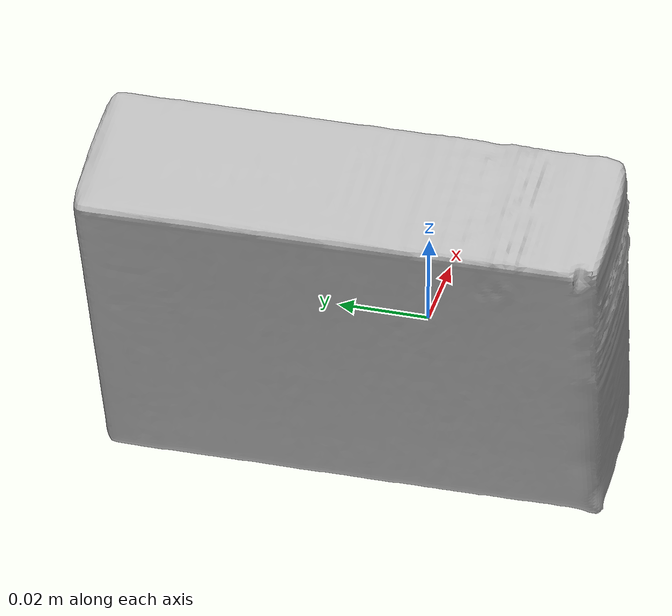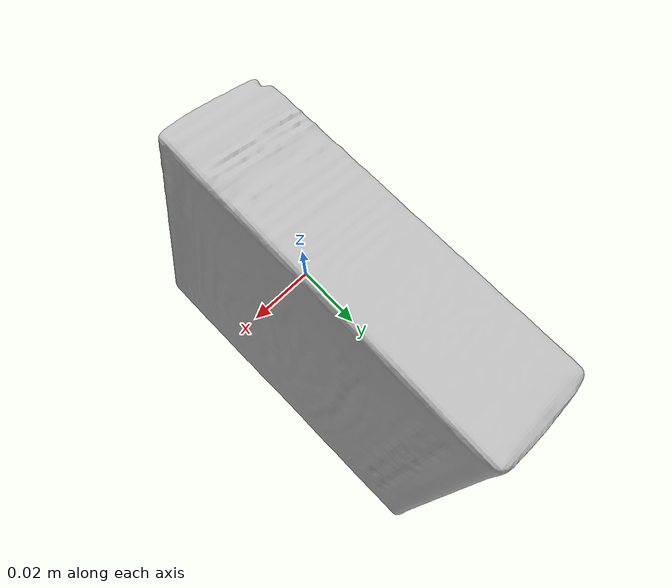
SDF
<?xml version='1.0'?>
<sdf version="1.4">
  <model name="CoughDropsBerries">
    <static>false</static>
    <link name="link">
      <inertial>
        <pose>0.0025762481740148487 0.016107634571335006 -0.0009032384605444974 1.5616800550821328 0.2712740349615567 -3.118975085646874</pose>
        <mass>0.03336195215740375</mass>
        <inertia>
          <ixx>5.340931100647851e-05</ixx>
          <ixy>-6.902611941576577e-22</ixy>
          <ixz>-1.1697068238690036e-21</ixz>
          <iyy>3.9111164257331985e-05</iyy>
          <iyz>1.684454319806907e-21</iyz>
          <izz>2.1543178032276465e-05</izz>
        </inertia>
      </inertial>
      <collision name="collision">
        <geometry>
          <mesh>
            <!-- Use a downsampled mesh for collisions -->
            <uri>model:///CoughDropsBerries/CoughDropsBerries_250_collision.obj</uri>
	        </mesh>
        </geometry>
        <surface>
      </surface>
      </collision>
      <visual name="visual">
        <geometry>
          <mesh>
            <uri>model:///CoughDropsBerries/CoughDropsBerries_25k_tex.obj</uri>
	        </mesh>
        </geometry>
        <material>
          <script>
            <uri>model:///CoughDropsBerries/CoughDropsBerries.material</uri>
            <name>CoughDropsBerries</name>
          </script>
        </material>
      </visual>
    </link>
  </model>
</sdf>
